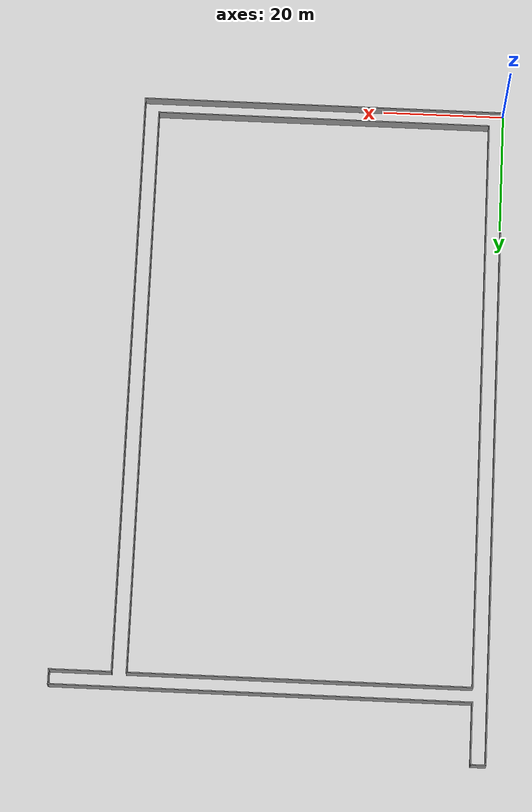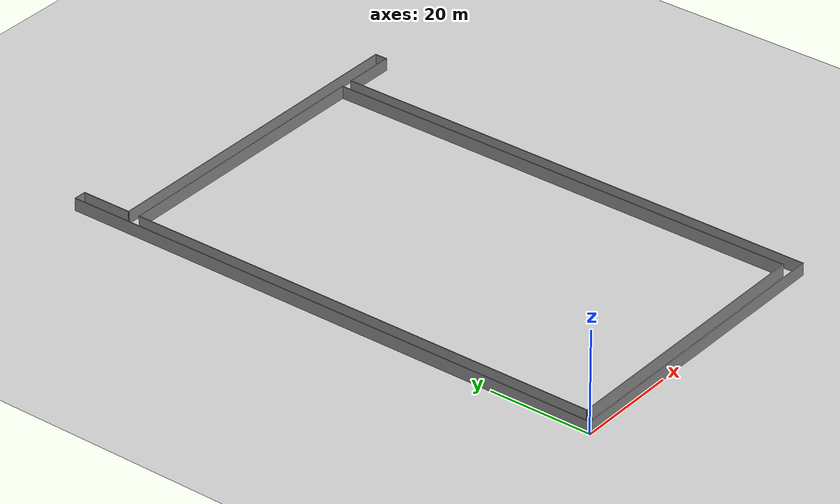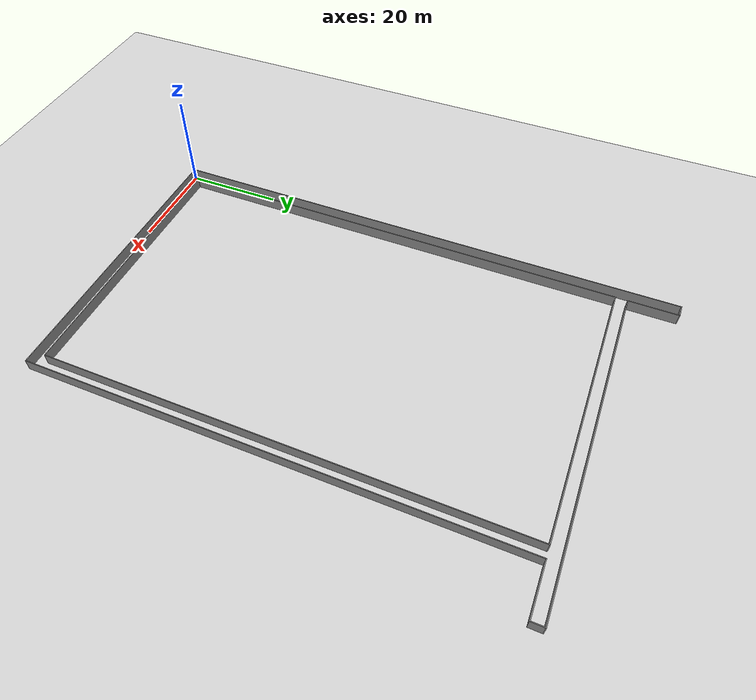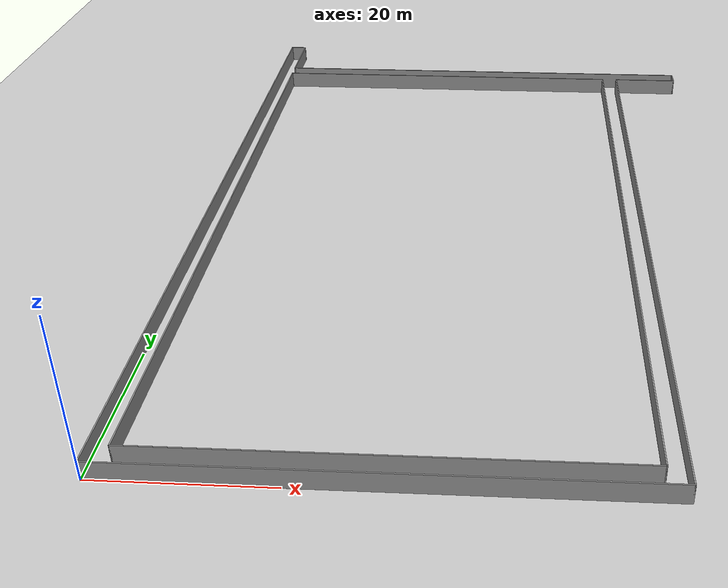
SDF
<sdf version='1.7'>
  <world name='schneider'>
    <!-- A global light source -->
    <include>
      <uri>model://sun</uri>
    </include>

    <!-- A ground plane -->
    <include>
      <uri>model://ground_plane</uri>
    </include>

    <physics type="ode">
      <real_time_update_rate>1000.0</real_time_update_rate>
      <max_step_size>0.001</max_step_size>
      <real_time_factor>1</real_time_factor>
      <ode>
        <solver>
          <type>quick</type>
          <iters>150</iters>
          <precon_iters>0</precon_iters>
          <sor>1.400000</sor>
          <use_dynamic_moi_rescaling>1</use_dynamic_moi_rescaling>
        </solver>
        <constraints>
          <cfm>0.00001</cfm>
          <erp>0.2</erp>
          <contact_max_correcting_vel>2000.000000</contact_max_correcting_vel>
          <contact_surface_layer>0.01000</contact_surface_layer>
        </constraints>
      </ode>
    </physics>

    <!-- A turtlebot symbol -->
    <include>
      <uri>model://Schneider</uri>
    </include>

    <scene>
      <ambient>0.4 0.4 0.4 1</ambient>
      <background>0.7 0.7 0.7 1</background>
      <shadows>true</shadows>
    </scene>

    <gui fullscreen='0'>
      <camera name='user_camera'>
        <pose>0.0 0.0 17.0 0 1.5708 0</pose>
        <view_controller>orbit</view_controller>
      </camera>
    </gui>
  </world>
</sdf>

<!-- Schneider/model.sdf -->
<sdf version='1.7'>
  <model name='Schneider'>
    <pose>35 55 0 0 -0 0</pose>
    <link name='Wall_31'>
      <collision name='Wall_31_Collision'>
        <geometry>
          <box>
            <size>110.15 0.15 2.5</size>
          </box>
        </geometry>
        <pose>0 0 1.25 0 -0 0</pose>
      </collision>
      <visual name='Wall_31_Visual'>
        <pose>0 0 1.25 0 -0 0</pose>
        <geometry>
          <box>
            <size>110.15 0.15 2.5</size>
          </box>
        </geometry>
        <material>
          <script>
            <uri>file://media/materials/scripts/gazebo.material</uri>
            <name>Gazebo/Grey</name>
          </script>
          <ambient>1 1 1 1</ambient>
        </material>
        <meta>
          <layer>0</layer>
        </meta>
      </visual>
      <pose>-35 -2e-06 0 0 -0 1.5708</pose>
    </link>
    <link name='Wall_33'>
      <collision name='Wall_33_Collision'>
        <geometry>
          <box>
            <size>60.15 0.15 2.5</size>
          </box>
        </geometry>
        <pose>0 0 1.25 0 -0 0</pose>
      </collision>
      <visual name='Wall_33_Visual'>
        <pose>0 0 1.25 0 -0 0</pose>
        <geometry>
          <box>
            <size>60.15 0.15 2.5</size>
          </box>
        </geometry>
        <material>
          <script>
            <uri>file://media/materials/scripts/gazebo.material</uri>
            <name>Gazebo/Grey</name>
          </script>
          <ambient>1 1 1 1</ambient>
        </material>
        <meta>
          <layer>0</layer>
        </meta>
      </visual>
      <pose>-5 -55 0 0 -0 0</pose>
    </link>
    <link name='Wall_34'>
      <collision name='Wall_34_Collision'>
        <geometry>
          <box>
            <size>97.75 0.15 2.5</size>
          </box>
        </geometry>
        <pose>0 0 1.25 0 -0 0</pose>
      </collision>
      <visual name='Wall_34_Visual'>
        <pose>0 0 1.25 0 -0 0</pose>
        <geometry>
          <box>
            <size>97.75 0.15 2.5</size>
          </box>
        </geometry>
        <material>
          <script>
            <uri>file://media/materials/scripts/gazebo.material</uri>
            <name>Gazebo/Grey</name>
          </script>
          <ambient>1 1 1 1</ambient>
        </material>
        <meta>
          <layer>0</layer>
        </meta>
      </visual>
      <pose>25 -6.2 0 0 -0 1.5708</pose>
    </link>
    <link name='Wall_36'>
      <collision name='Wall_36_Collision'>
        <geometry>
          <box>
            <size>55.35 0.15 2.5</size>
          </box>
        </geometry>
        <pose>0 0 1.25 0 -0 0</pose>
      </collision>
      <visual name='Wall_36_Visual'>
        <pose>0 0 1.25 0 -0 0</pose>
        <geometry>
          <box>
            <size>55.35 0.15 2.5</size>
          </box>
        </geometry>
        <material>
          <script>
            <uri>file://media/materials/scripts/gazebo.material</uri>
            <name>Gazebo/Grey</name>
          </script>
          <ambient>1 1 1 1</ambient>
        </material>
        <meta>
          <layer>0</layer>
        </meta>
      </visual>
      <pose>-5 -52.6 0 0 -0 0</pose>
    </link>
    <link name='Wall_38'>
      <collision name='Wall_38_Collision'>
        <geometry>
          <box>
            <size>95.35 0.15 2.5</size>
          </box>
        </geometry>
        <pose>0 0 1.25 0 -0 0</pose>
      </collision>
      <visual name='Wall_38_Visual'>
        <pose>0 0 1.25 0 -0 0</pose>
        <geometry>
          <box>
            <size>95.35 0.15 2.5</size>
          </box>
        </geometry>
        <material>
          <script>
            <uri>file://media/materials/scripts/gazebo.material</uri>
            <name>Gazebo/Grey</name>
          </script>
          <ambient>1 1 1 1</ambient>
        </material>
        <meta>
          <layer>0</layer>
        </meta>
      </visual>
      <pose>-32.6 -5 0 0 -0 1.5708</pose>
    </link>
    <link name='Wall_40'>
      <collision name='Wall_40_Collision'>
        <geometry>
          <box>
            <size>95.35 0.15 2.5</size>
          </box>
        </geometry>
        <pose>0 0 1.25 0 -0 0</pose>
      </collision>
      <visual name='Wall_40_Visual'>
        <pose>0 0 1.25 0 -0 0</pose>
        <geometry>
          <box>
            <size>95.35 0.15 2.5</size>
          </box>
        </geometry>
        <material>
          <script>
            <uri>file://media/materials/scripts/gazebo.material</uri>
            <name>Gazebo/Grey</name>
          </script>
          <ambient>1 1 1 1</ambient>
        </material>
        <meta>
          <layer>0</layer>
        </meta>
      </visual>
      <pose>22.6 -5 0 0 -0 1.5708</pose>
    </link>
    <link name='Wall_42'>
      <collision name='Wall_42_Collision'>
        <geometry>
          <box>
            <size>55.35 0.15 2.5</size>
          </box>
        </geometry>
        <pose>0 0 1.25 0 -0 0</pose>
      </collision>
      <visual name='Wall_42_Visual'>
        <pose>0 0 1.25 0 -0 0</pose>
        <geometry>
          <box>
            <size>55.35 0.15 2.5</size>
          </box>
        </geometry>
        <material>
          <script>
            <uri>file://media/materials/scripts/gazebo.material</uri>
            <name>Gazebo/Grey</name>
          </script>
          <ambient>1 1 1 1</ambient>
        </material>
        <meta>
          <layer>0</layer>
        </meta>
      </visual>
      <pose>-5 42.6 0 0 -0 0</pose>
    </link>
    <link name='Wall_44'>
      <collision name='Wall_44_Collision'>
        <geometry>
          <box>
            <size>10.15 0.15 2.5</size>
          </box>
        </geometry>
        <pose>0 0 1.25 0 -0 0</pose>
      </collision>
      <visual name='Wall_44_Visual'>
        <pose>0 0 1.25 0 -0 0</pose>
        <geometry>
          <box>
            <size>10.15 0.15 2.5</size>
          </box>
        </geometry>
        <material>
          <script>
            <uri>file://media/materials/scripts/gazebo.material</uri>
            <name>Gazebo/Grey</name>
          </script>
          <ambient>1 1 1 1</ambient>
        </material>
        <meta>
          <layer>0</layer>
        </meta>
      </visual>
      <pose>30 42.6 0 0 -0 0</pose>
    </link>
    <link name='Wall_46'>
      <collision name='Wall_46_Collision'>
        <geometry>
          <box>
            <size>2.55 0.15 2.5</size>
          </box>
        </geometry>
        <pose>0 0 1.25 0 -0 0</pose>
      </collision>
      <visual name='Wall_46_Visual'>
        <pose>0 0 1.25 0 -0 0</pose>
        <geometry>
          <box>
            <size>2.55 0.15 2.5</size>
          </box>
        </geometry>
        <material>
          <script>
            <uri>file://media/materials/scripts/gazebo.material</uri>
            <name>Gazebo/Grey</name>
          </script>
          <ambient>1 1 1 1</ambient>
        </material>
        <meta>
          <layer>0</layer>
        </meta>
      </visual>
      <pose>35 43.8 0 0 -0 1.5708</pose>
    </link>
    <link name='Wall_48'>
      <collision name='Wall_48_Collision'>
        <geometry>
          <box>
            <size>67.75 0.15 2.5</size>
          </box>
        </geometry>
        <pose>0 0 1.25 0 -0 0</pose>
      </collision>
      <visual name='Wall_48_Visual'>
        <pose>0 0 1.25 0 -0 0</pose>
        <geometry>
          <box>
            <size>67.75 0.15 2.5</size>
          </box>
        </geometry>
        <material>
          <script>
            <uri>file://media/materials/scripts/gazebo.material</uri>
            <name>Gazebo/Grey</name>
          </script>
          <ambient>1 1 1 1</ambient>
        </material>
        <meta>
          <layer>0</layer>
        </meta>
      </visual>
      <pose>1.20001 45 0 0 -0 3.14159</pose>
    </link>
    <link name='Wall_50'>
      <collision name='Wall_50_Collision'>
        <geometry>
          <box>
            <size>10.15 0.15 2.5</size>
          </box>
        </geometry>
        <pose>0 0 1.25 0 -0 0</pose>
      </collision>
      <visual name='Wall_50_Visual'>
        <pose>0 0 1.25 0 -0 0</pose>
        <geometry>
          <box>
            <size>10.15 0.15 2.5</size>
          </box>
        </geometry>
        <material>
          <script>
            <uri>file://media/materials/scripts/gazebo.material</uri>
            <name>Gazebo/Grey</name>
          </script>
          <ambient>1 1 1 1</ambient>
        </material>
        <meta>
          <layer>0</layer>
        </meta>
      </visual>
      <pose>-32.6 50 0 0 -0 1.5708</pose>
    </link>
    <link name='Wall_52'>
      <collision name='Wall_52_Collision'>
        <geometry>
          <box>
            <size>2.55 0.15 2.5</size>
          </box>
        </geometry>
        <pose>0 0 1.25 0 -0 0</pose>
      </collision>
      <visual name='Wall_52_Visual'>
        <pose>0 0 1.25 0 -0 0</pose>
        <geometry>
          <box>
            <size>2.55 0.15 2.5</size>
          </box>
        </geometry>
        <material>
          <script>
            <uri>file://media/materials/scripts/gazebo.material</uri>
            <name>Gazebo/Grey</name>
          </script>
          <ambient>1 1 1 1</ambient>
        </material>
        <meta>
          <layer>0</layer>
        </meta>
      </visual>
      <pose>-33.8 55 0 0 -0 0</pose>
    </link>
    <static>1</static>
  </model>
</sdf>
